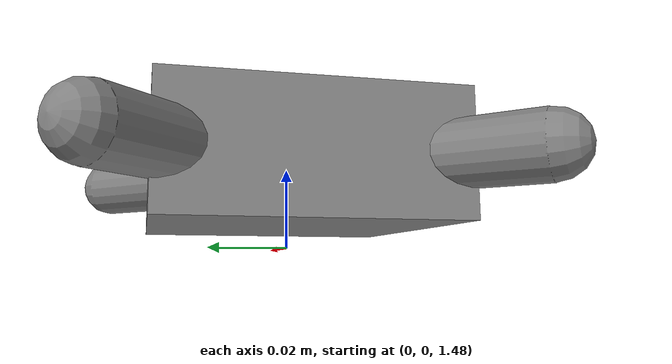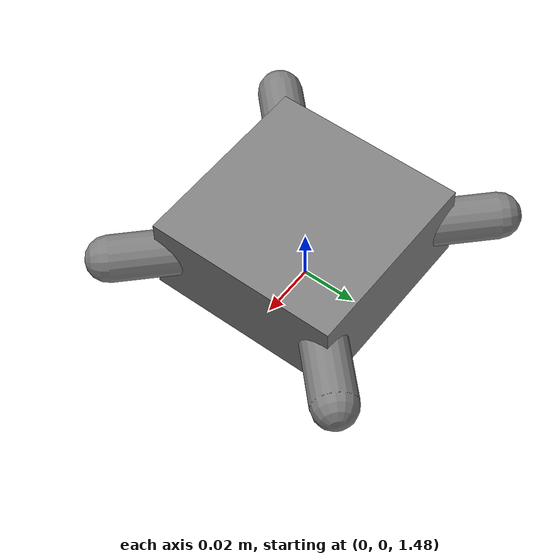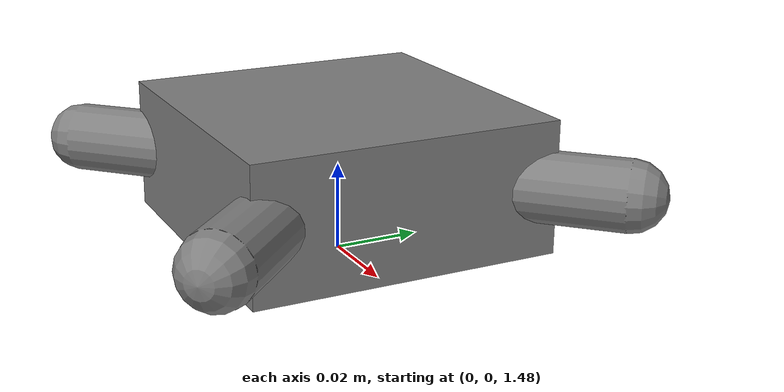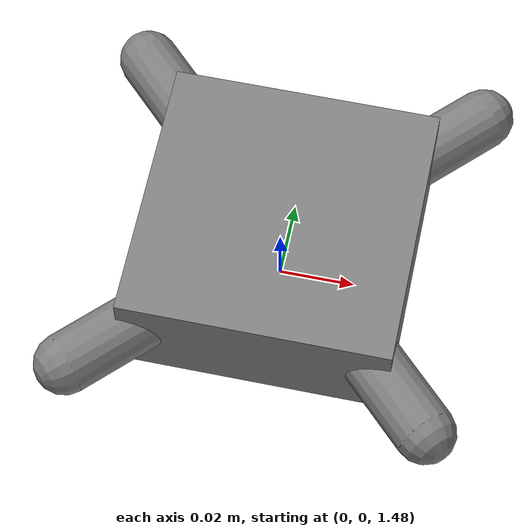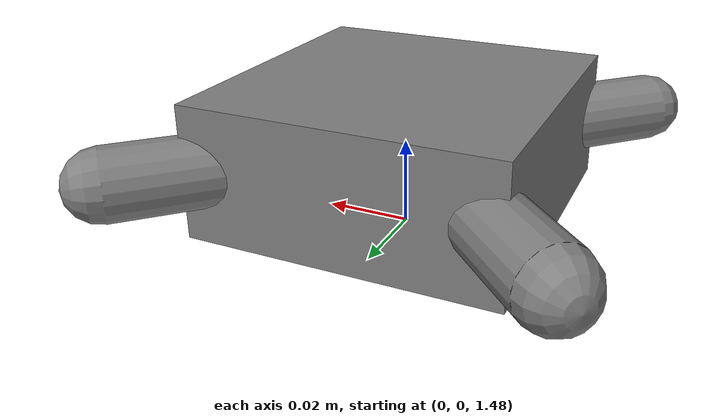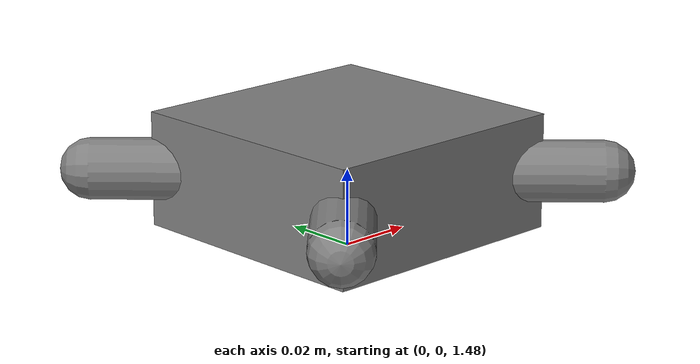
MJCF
<mujoco model="Browser racing quadrotor">
  <option timestep="0.004" gravity="0 0 -9.81" integrator="implicitfast"/>
  <default><geom friction="0.5 0.01 0.001" solref="0.008 1"/></default>
  <worldbody>
    <geom name="floor" type="plane" size="40 20 .1"/>
    <body name="drone" pos="0 0 1.5">
      <freejoint/>
      <inertial pos="0 0 0" mass="0.029" diaginertia="0.000014 0.000014 0.0000217"/>
      <geom name="hull" type="box" size=".035 .035 .015"/>
      <geom type="capsule" fromto="-.046 -.046 0 .046 .046 0" size=".008"/>
      <geom type="capsule" fromto="-.046 .046 0 .046 -.046 0" size=".008"/>
      <site name="motor1" pos=".0325 .0325 0"/>
      <site name="motor2" pos="-.0325 .0325 0"/>
      <site name="motor3" pos="-.0325 -.0325 0"/>
      <site name="motor4" pos=".0325 -.0325 0"/>
    </body>
  </worldbody>
</mujoco>
